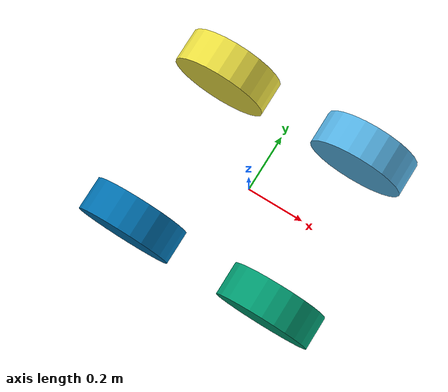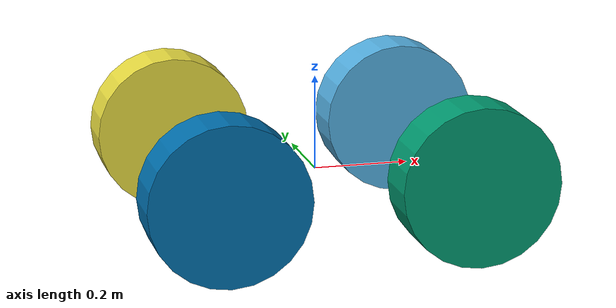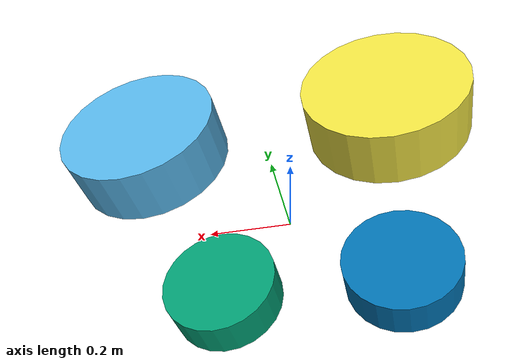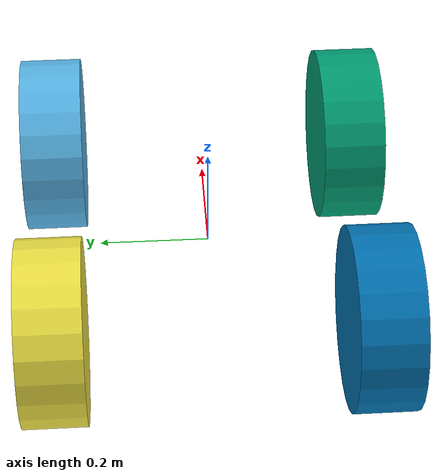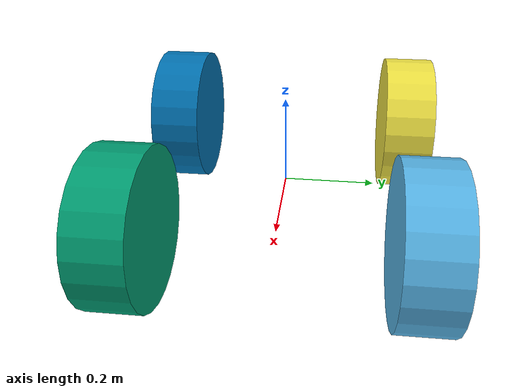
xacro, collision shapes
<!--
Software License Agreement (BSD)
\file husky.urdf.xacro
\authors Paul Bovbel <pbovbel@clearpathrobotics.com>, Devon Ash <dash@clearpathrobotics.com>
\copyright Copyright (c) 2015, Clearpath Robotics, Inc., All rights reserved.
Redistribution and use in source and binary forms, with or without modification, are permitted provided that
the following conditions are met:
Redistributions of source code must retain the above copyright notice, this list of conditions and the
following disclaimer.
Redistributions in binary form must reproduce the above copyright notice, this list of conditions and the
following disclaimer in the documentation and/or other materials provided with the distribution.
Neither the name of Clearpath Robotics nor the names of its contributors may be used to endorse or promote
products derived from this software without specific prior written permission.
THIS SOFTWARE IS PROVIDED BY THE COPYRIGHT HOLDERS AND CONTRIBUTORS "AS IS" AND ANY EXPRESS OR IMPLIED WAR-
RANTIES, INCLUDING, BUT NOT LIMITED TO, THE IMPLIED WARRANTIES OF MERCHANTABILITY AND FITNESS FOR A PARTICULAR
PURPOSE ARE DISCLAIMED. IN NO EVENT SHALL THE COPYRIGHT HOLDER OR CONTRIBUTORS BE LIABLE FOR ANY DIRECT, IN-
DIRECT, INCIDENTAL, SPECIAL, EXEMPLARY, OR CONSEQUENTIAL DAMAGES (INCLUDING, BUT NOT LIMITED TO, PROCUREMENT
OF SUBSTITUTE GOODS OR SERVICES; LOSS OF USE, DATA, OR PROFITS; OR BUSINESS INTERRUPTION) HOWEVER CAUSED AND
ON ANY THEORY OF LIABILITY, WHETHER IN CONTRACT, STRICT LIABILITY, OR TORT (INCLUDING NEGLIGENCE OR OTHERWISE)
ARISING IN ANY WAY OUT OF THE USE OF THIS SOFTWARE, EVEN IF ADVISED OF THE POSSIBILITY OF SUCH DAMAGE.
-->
<?xml version="1.0"?>
<robot name="husky_wheels" xmlns:xacro="http://ros.org/wiki/xacro">

  <xacro:property name="fixed_wheel" default="${False}" />
  <xacro:include filename="$(find husky_panda_manipulation)/data/wheel.urdf.xacro" />

  <xacro:property name="M_PI" value="3.14159"/>
  <!-- Wheel Mounting Positions -->
  <xacro:property name="wheelbase" value="0.5120" />
  <xacro:property name="track" value="0.5708" />
  <xacro:property name="wheel_vertical_offset" value="0.03282" />

  <!-- Wheel Properties -->
  <xacro:property name="wheel_length" value="0.1143" />
  <xacro:property name="wheel_radius" value="0.1651" />
  <link name="base_link"/>

  <!-- Husky wheel macros -->
  <xacro:husky_wheel wheel_prefix="front_left" fixed_wheel="${fixed_wheel}">
    <origin xyz="${wheelbase/2} ${track/2} ${wheel_vertical_offset}" rpy="0 0 0" />
  </xacro:husky_wheel>
  <xacro:husky_wheel wheel_prefix="front_right" fixed_wheel="${fixed_wheel}">
    <origin xyz="${wheelbase/2} ${-track/2} ${wheel_vertical_offset}" rpy="0 0 0" />
  </xacro:husky_wheel>
  <xacro:husky_wheel wheel_prefix="rear_left" fixed_wheel="${fixed_wheel}">
    <origin xyz="${-wheelbase/2} ${track/2} ${wheel_vertical_offset}" rpy="0 0 0" />
  </xacro:husky_wheel>
  <xacro:husky_wheel wheel_prefix="rear_right" fixed_wheel="${fixed_wheel}">
    <origin xyz="${-wheelbase/2} ${-track/2} ${wheel_vertical_offset}" rpy="0 0 0" />
  </xacro:husky_wheel>

</robot>

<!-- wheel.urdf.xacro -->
<robot xmlns:xacro="http://ros.org/wiki/xacro" name="husky_wheel">

	<xacro:macro name="husky_wheel" params="fixed_wheel wheel_prefix *joint_pose">
		<link name="${wheel_prefix}_wheel_link">
			<inertial>
				<mass value="2.637" />
				<origin xyz="0 0 0" />
				<inertia  ixx="0.02467" ixy="0" ixz="0" iyy="0.04411" iyz="0" izz="0.02467" />
			</inertial>
			<visual>
				<origin xyz="0 0 0" rpy="0 0 0" />
				<geometry>
					<mesh filename="package://husky_description/meshes/wheel.dae" />
				</geometry>
			</visual>
			<collision>
				<origin xyz="0 0 0" rpy="${M_PI/2} 0 0" />
				<geometry>
					<cylinder length="${wheel_length}" radius="${wheel_radius}" />
				</geometry>
			</collision>
		</link>

		<gazebo reference="${wheel_prefix}_wheel_link">
			<mu1 value="1.0"/>
			<mu2 value="1.0"/>
			<kp value="10000000.0" />
			<kd value="1.0" />
			<fdir1 value="1 0 0"/>
		</gazebo>

	      <xacro:unless value="${fixed_wheel}">
			<joint name="${wheel_prefix}_wheel" type="fixed">
			<parent link="base_link"/>
			<child link="${wheel_prefix}_wheel_link"/>
			<xacro:insert_block name="joint_pose"/>
			<axis xyz="0 1 0" rpy="0 0 0" />
		</joint>
	      </xacro:unless>

		<xacro:if value="${fixed_wheel}">
			<joint name="${wheel_prefix}_wheel" type="continuous">
				<parent link="base_link"/>
				<child link="${wheel_prefix}_wheel_link"/>
				<xacro:insert_block name="joint_pose"/>
				<axis xyz="0 1 0" rpy="0 0 0" />
			</joint>

			<transmission name="${wheel_prefix}_wheel_trans" type="SimpleTransmission">
				<type>transmission_interface/SimpleTransmission</type>
				<actuator name="${wheel_prefix}_wheel_motor">
					<mechanicalReduction>1</mechanicalReduction>
				</actuator>
				<joint name="${wheel_prefix}_wheel">
					<hardwareInterface>hardware_interface/VelocityJointInterface</hardwareInterface>
				</joint>
			</transmission>
	      </xacro:if>

	</xacro:macro>
</robot>
